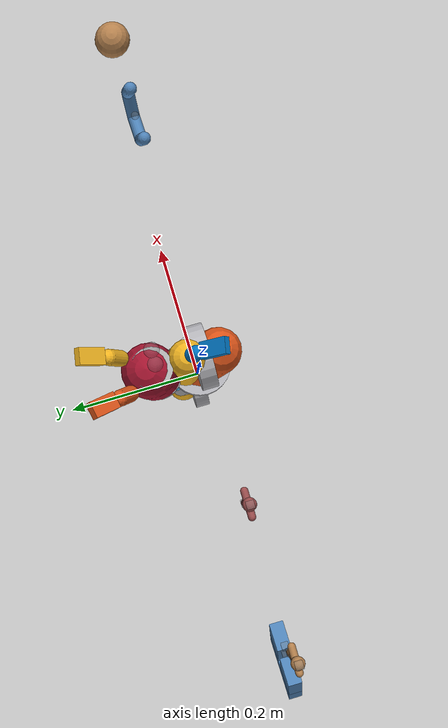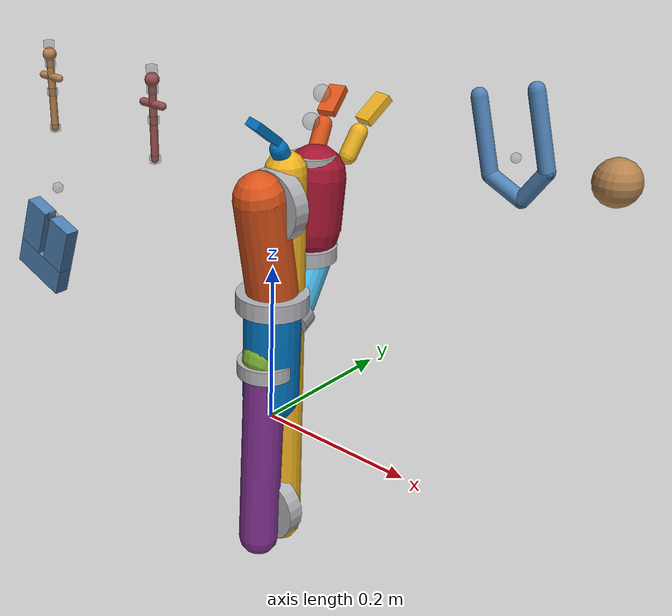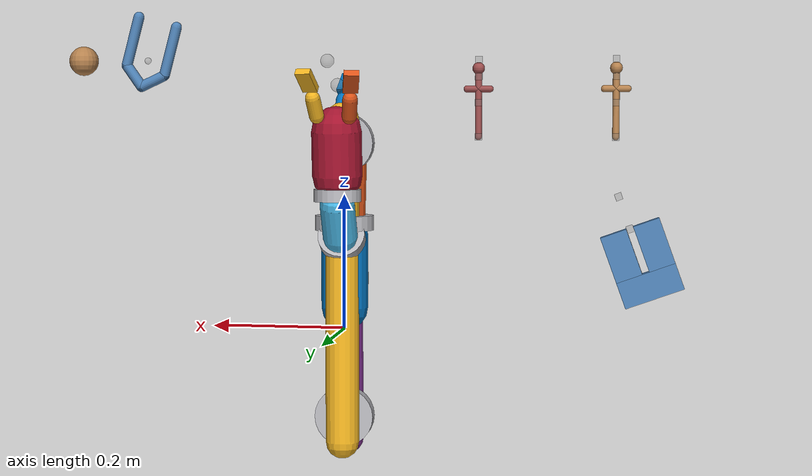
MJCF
<mujoco model='jaco'>
  <include file="./common/visual.xml"/>
  <include file="./common/skybox.xml"/>
  <include file="./common/materials.xml"/>

  <default>
    <geom contype='1' conaffinity='1' condim='3' friction='.1 .1' solimp='.95 .98 .0005' solref='0.02 1.1' density='1'/>
    <joint type='hinge' armature='0' damping='0'
      solimpfriction='.95 .95 0' solreffriction='.02 1' solimplimit='0 .99 .01' solreflimit='.02 1'/>
    <site rgba='.5 .5 .5 .3'/>
    <general ctrllimited='true' ctrlrange='-0.84 0.84' forcelimited='true'/>
    <default class='big_joint'>
      <joint frictionloss='.01' armature='1' damping='0.01' range='-3.141592653589793 9.42477796076938' limited='false'/>
      <velocity kv='20' forcerange='-3.15 3.15'/>
    </default>
    <default class='little_joint'>
      <joint frictionloss='.01' armature='1' damping='0.01' range='-3.141592653589793 9.42477796076938' limited='false'/>
      <velocity kv='20' forcerange='-3.15 3.15'/>
    </default>
    <default class='finger'>
      <joint frictionloss='0.1' armature='.1' axis='0 0 1' limited='true' range='0.15 1.2' damping='.1'/>
      <velocity kv='10' ctrlrange='-0.84 0.84' gear='1' forcerange='-1.5 1.5'/>
    </default>
    <default class='fingertip'>
      <geom type='box' pos='0.065 -0.022 0' size='0.02 .005 .011' rgba='1 0 0 1'
            quat='1 0 0 -0.235' condim='4'/>
      <site type='ellipsoid' pos='0.065 -0.022 0' size='0.02 .005 .011'
            quat='1 0 0 -0.235'/>
    </default>

    <default class='base'>
      <geom type='capsule' size='0.0350512 0.0555543' pos='-0.000132925 -0.000516418 0.0820911' quat='0.6951 -0.00714564 0.00738544 0.71884'/>
    </default>
    <default class='link_1'>
      <geom type='capsule' size='0.031417 0.0668352' pos='-3.49946e-05 0.010651 -0.0670012' quat='0.704277 0.0627825 -0.0628 0.70435'/>
    </default>
    <default class='link_2'>
      <geom type='capsule' size='0.0251592 0.240341' pos='0.205004 7.5835e-05 -0.0202812' quat='2.23957e-06 0.707108 5.30416e-06 0.707106'/>
    </default>
    <default class='link_3'>
      <geom type='capsule' size='0.0255647 0.120643' pos='0.0843942 7.48907e-06 -0.0177123' quat='-4.64475e-05 0.692702 -4.11814e-05 0.721224'/>
    </default>
    <default class='link_4'>
      <geom type='capsule' size='0.0257405 0.0289568' pos='0.0101659 -4.64261e-05 -0.0369867' quat='0.965925 1.43712e-05 -0.258823 3.85082e-06'/>
    </default>
    <default class='link_5'>
      <geom type='capsule' size='0.0257405 0.0289568' pos='0.0101659 -4.64261e-05 -0.0369867' quat='0.965925 1.43712e-05 -0.258823 3.85082e-06'/>
    </default>
    <default class='link_6'>
      <geom type='capsule' size='0.0368731 0.0322296' pos='0.00628384 -2.92087e-05 -0.0608681' quat='0.708562 -0.0338601 -0.0358744 0.703923'/>
    </default>
    <default class='finger_knuckle'>
      <geom type='capsule' size='0.0108231 0.0145116' pos='0.0190913 -0.0112192 1.10387e-06' quat='0.475811 -0.475815 0.523071 -0.523068'/>
    </default>

    <default class="object">
      <geom material="self"/>
    </default>

    <default class="task">
      <site rgba="0 0 0 0"/>
    </default>

    <default class="obstacle">
      <geom material="decoration" friction="0"/>
    </default>

    <default class="ghost">
      <geom material="target" contype="0" conaffinity="0"/>
    </default>

  </default>

  <worldbody>
    <body name='b_base' pos='0 0 0.005'>
      <site type='sphere' size='.01' name='basesite' pos='0 0 0' rgba='1 0 0 1'/>
      <inertial pos='-0.000132925 -0.000516418 0.0820911' quat='0.6951 -0.00714556 0.00738537 0.71884' mass='0.00718278' diaginertia='0.00157301 0.00157269 0.00058831'/>
      <geom name='base' class='base' rgba='0 0.4470 0.7410 1'/>
      <body name='b_1' pos='0 0 0.1535' quat='0 -1 0 0'>
        <inertial pos='-3.49946e-005 0.010651 -0.0670012' quat='0.704277 0.0627825 -0.0628 0.70435' mass='0.00644357' diaginertia='0.00172311 0.00163259 0.00042883'/>
        <joint name='joint_1' class='big_joint' axis='0 0 1'/>
        <geom name='link_1' class='link_1' rgba='0.8500 0.3250 0.0980 1'/>
        <geom name='ring_1' contype='0' conaffinity='0' type='cylinder' size='0.044 0.011' pos='0 0 0' rgba='0.7 0.7 0.72 1'/>
        <body name='b_2' pos='0 0 -0.1185' quat='-0.7071067811865475 0.7071067811865475 0.7071067811865475 0.7071067811865475'>
          <inertial pos='0.205004 7.5835e-005 -0.0202812' quat='2.24027e-006 0.707108 5.30493e-006 0.707106' mass='0.011691' diaginertia='0.0253426 0.0250512 0.000536357'/>
          <joint name='joint_2' class='big_joint' axis='0 0 1'/>
          <geom name='link_2' class='link_2' rgba='0.9290 0.6940 0.1250 1'/>
          <geom name='ring_2' contype='0' conaffinity='0' type='cylinder' size='0.044 0.011' pos='0 0 0' euler='0 0 0' rgba='0.7 0.7 0.72 1'/>
          <body name='b_3' pos='0.41 0 0' quat='0 0 1 0'>
            <inertial pos='0.0843942 7.48909e-006 -0.0177123' quat='-4.64469e-005 0.692702 -4.11798e-005 0.721224' mass='0.00673417' diaginertia='0.00420255 0.00409328 0.000303584'/>
            <joint name='joint_3' class='big_joint' axis='0 0 1' range='0.6131110819452792 5.673924357222234' limited='true'/>
            <geom name='link_3' class='link_3' rgba='0.4940 0.1840 0.5560 1'/>
            <geom name='ring_3' contype='0' conaffinity='0' type='cylinder' size='0.044 0.011' pos='0 0 0' euler='0 0 0' rgba='0.7 0.7 0.72 1'/>
            <body name='b_4' pos='0.207 0 -0.01125' quat='-0.7071067811865475 0 0.7071067811865475 0'>
              <inertial pos='0.0101659 -4.64261e-005 -0.0369867' quat='0.965925 1.91737e-005 -0.258823 -1.40769e-005' mass='0.00221423' diaginertia='0.0001816 0.000174586 9.79319e-005'/>
              <joint name='joint_4' class='little_joint' axis='0 0 1'/>
              <geom name='link_4' class='link_4' rgba='0.4660 0.6740 0.1880 1'/>
              <geom name='ring_4' contype='0' conaffinity='0' type='cylinder' size='0.035 0.009' pos='0 0 0' euler='0 0 0' rgba='0.7 0.7 0.7 1'/>
              <body name='b_5' pos='0.037 0 -0.06408' quat='0 0.5 0 -0.8660254037844386'>
                <inertial pos='0.0101659 -4.64261e-005 -0.0369867' quat='0.965925 1.91737e-005 -0.258823 -1.40769e-005' mass='0.00221423' diaginertia='0.0001816 0.000174586 9.79319e-005'/>
                <joint name='joint_5' class='little_joint' axis='0 0 1'/>
                <geom name='ring_5' contype='0' conaffinity='0' type='cylinder' size='0.035 0.009' pos='0 0 0' euler='0 0 0' rgba='0.7 0.7 0.72 1'/>
                <geom name='link_5' class='link_5' rgba='0.3010 0.7450 0.9330 1'/>
                <body name='b_hand' pos='0.037 0 -0.06408' quat='0 -0.5 0 0.8660254037844386'>
                  <camera name='cam_hand' pos='0 .015 -.13' fovy='135'/>
                  <site type='sphere' size='.01' name='wristsite' pos='0 0 0' rgba='1 0 0 1'/>
                  <site type='sphere' size='.01' name='gripsite' pos='0 0 -.16' rgba='.5 .5 .5 .3'/>
                  <site type='sphere' size='.01' name='pinchsite' pos='0 0.015 -0.195' rgba='.5 .5 .5 .3'/>
                  <inertial pos='0.00628384 -2.92087e-005 -0.0608681' quat='0.708562 -0.0338601 -0.0358744 0.703923' mass='0.00547172' diaginertia='0.000759818 0.000676099 0.0004995'/>
                  <joint name='joint_6' class='little_joint' axis='0 0 1'/>
                  <geom name='link_6' class='link_6' rgba='0.6350 0.0780 0.1840 1'/>
                  <geom name='ring_hand' contype='0' conaffinity='0' type='cylinder' size='0.035 0.009' pos='0 0 0' euler='0 0 0' rgba='0.7 0.7 0.72 1'/>

                  <body name = 'b_palm'  pos='0.005 0 -0.11' euler='0 0 0'>
                    <geom type='cylinder' contype='0' conaffinity='7'  size='.0275 0.01' friction='1 1' rgba='0.7 0.7 0.7 1' name='palm'/>
                  </body>

                  <body name='b_finger_1' childclass='finger' pos='-0.029 .003 -0.1145' quat='-0.414818 -0.329751 -0.663854 0.52772'>
                    <inertial pos='0.0485761 -0.000715511 0' quat='0.507589 0.507348 0.492543 0.492294' mass='0.000379077' diaginertia='4.00708e-005 4.00527e-005 2.156e-006'/>
                    <joint name='joint_finger_1'/>
                    <geom name='finger_knuckle_1' class='finger_knuckle' rgba='0 0.4470 0.7410 1'/>
                    <geom class='fingertip' name='finger_tip_1' rgba='0 0.4470 0.7410 1'/>
                    <site class='fingertip' name='fingertip1'/>
                  </body>
                  <body name='b_finger_2' childclass='finger' pos='0.0295 0.0216 -0.115' quat='0.561254 -0.620653 0.321748 0.443014'>
                    <inertial pos='0.0485761 -0.000715511 0' quat='0.507589 0.507348 0.492543 0.492294' mass='0.000379077' diaginertia='4.00708e-005 4.00527e-005 2.156e-006'/>
                    <joint name='joint_finger_2'/>
                    <geom name='finger_knuckle_2' class='finger_knuckle' rgba='0.9290 0.6940 0.1250 1'/>
                    <geom class='fingertip' name='finger_tip_2' rgba='0.9290 0.6940 0.1250 1'/>
                    <site class='fingertip' name='fingertip2'/>
                  </body>
                  <body name='b_finger_3' childclass='finger' pos='0.0295 -0.0216 -0.1145' quat='0.625248 -0.567602 0.434845 0.312735'>
                    <inertial pos='0.0485761 -0.000715511 0' quat='0.507589 0.507348 0.492543 0.492294' mass='0.000379077' diaginertia='4.00708e-005 4.00527e-005 2.156e-006'/>
                    <joint name='joint_finger_3'/>
                    <geom name='finger_knuckle_3' class='finger_knuckle' rgba='0.8500 0.3250 0.0980 1'/>
                    <geom class='fingertip' name='finger_tip_3' rgba='0.8500 0.3250 0.0980 1'/>
                    <site class='fingertip' name='fingertip3'/>
                  </body>
                </body>
              </body>
            </body>
          </body>
        </body>
      </body>
    </body>

    <!-- props -->
    <body name="ball" pos=".4 0 .4" childclass="object">
      <joint name="ball_x" type="slide" axis="1 0 0" ref=".4"/>
      <joint name="ball_z" type="slide" axis="0 0 1" ref=".4"/>
      <joint name="ball_y" type="hinge" axis="0 1 0"/>
      <geom  name="ball" type="sphere" size=".022" />
      <site  name="ball" type="sphere"/>
    </body>

    <body name="peg" pos="-.4 0 .4" childclass="object">
      <joint name="peg_x" type="slide" axis="1 0 0" ref="-.4"/>
      <joint name="peg_z" type="slide" axis="0 0 1" ref=".4"/>
      <joint name="peg_y" type="hinge" axis="0 1 0"/>
      <geom name="blade" type="capsule" size=".005" fromto="0 0 -.013 0 0 -.113"/>
      <geom name="guard" type="capsule" size=".005" fromto="-.017 0 -.043 .017 0 -.043"/>
      <body name="pommel" pos="0 0 -.013">
        <geom name="pommel" type="sphere" size=".009"/>
      </body>
      <site name="peg" type="box" pos="0 0 -.063"/>
      <site name="peg_pinch" type="box" pos="0 0 -.025"/>
      <site name="peg_grasp" type="box" pos="0 0 0"/>
      <site name="peg_tip"   type="box" pos="0 0 -.113"/>
    </body>

    <!-- receptacles -->
    <body name="slot" pos="-.405 0 .2" euler="0 20 0" childclass="obstacle">
      <geom name="slot_0" type="box" pos="-.0252 0 -.083" size=".0198 .01 .035"/>
      <geom name="slot_1" type="box" pos=" .0252 0 -.083" size=".0198 .01 .035"/>
      <geom name="slot_2" type="box" pos="  0   0 -.138" size=".045 .01 .02"/>
      <site name="slot" type="box" pos="0 0 0"/>
      <site name="slot_end" type="box" pos="0 0 -.05"/>
    </body>

    <body name="cup" pos=".3 0 .4" euler="0 -15 0" childclass="obstacle">
      <geom name="cup_0" type="capsule" size=".008" fromto="-.03 0 .06 -.03 0 -.015" />
      <geom name="cup_1" type="capsule" size=".008" fromto="-.03 0 -.015 0 0 -.04" />
      <geom name="cup_2" type="capsule" size=".008" fromto="0 0 -.04 .03 0 -.015" />
      <geom name="cup_3" type="capsule" size=".008" fromto=".03 0 -.015 .03 0 .06" />
      <site name="cup" size=".005"/>
    </body>

    <!-- targets -->
    <body name="target_ball" pos=".4 .001 .4" childclass="ghost">
      <geom  name="target_ball" type="sphere" size=".02" />
      <site  name="target_ball" type="sphere"/>
    </body>

    <body name="target_peg" pos="-.2 .001 .4" childclass="ghost">
      <geom name="target_blade" type="capsule" size=".005" fromto="0 0 -.013 0 0 -.113"/>
      <geom name="target_guard" type="capsule" size=".005" fromto="-.017 0 -.043 .017 0 -.043"/>
      <geom name="target_pommel" type="sphere" size=".009" pos="0 0 -.013"/>
      <site name="target_peg" type="box" pos="0 0 -.063"/>
      <site name="target_peg_pinch" type="box" pos="0 0 -.025"/>
      <site name="target_peg_grasp" type="box" pos="0 0 0"/>
      <site name="target_peg_tip"   type="box" pos="0 0 -.113"/>
    </body>

  </worldbody>

  <contact>
    <exclude body1='b_base' body2='b_1'/>
    <exclude body1='b_finger_1' body2='b_finger_2'/>
    <exclude body1='b_finger_1' body2='b_finger_3'/>
    <exclude body1='b_finger_2' body2='b_finger_3'/>
  </contact>

  <sensor>
    <touch name="fingertip1" site='fingertip1'/>
    <touch name="fingertip2" site='fingertip2'/>
    <touch name="fingertip3" site='fingertip3'/>
    <force name="wristforce" site='wristsite'/>
    <torque name="wristtorque" site='wristsite'/>
    <force name="baseforce" site='basesite'/>
    <torque name="basetorque" site='basesite'/>
  </sensor>

  <actuator>
    <velocity joint='joint_1'        class='big_joint'/>
    <velocity joint='joint_2'        class='big_joint'/>
    <velocity joint='joint_3'        class='big_joint'/>
    <velocity joint='joint_4'        class='little_joint'/>
    <velocity joint='joint_5'        class='little_joint'/>
    <velocity joint='joint_6'        class='little_joint'/>
    <velocity joint='joint_finger_1' class='finger'/>
    <velocity joint='joint_finger_2' class='finger'/>
    <velocity joint='joint_finger_3' class='finger'/>
  </actuator>
</mujoco>

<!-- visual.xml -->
<mujoco>
    <visual>
        <headlight ambient=".4 .4 .4" diffuse=".8 .8 .8" specular="0.1 0.1 0.1"/>
        <map znear=".01"/>
        <quality shadowsize="2048"/>
    </visual>
</mujoco>

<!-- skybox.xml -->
<mujoco>
    <asset>
        <texture name="skybox" type="skybox" builtin="gradient" rgb1=".4 .6 .8" rgb2="0 0 0"
                 width="800" height="800" mark="random" markrgb="1 1 1"/>
    </asset>
</mujoco>

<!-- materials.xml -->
<!--
Common textures, colors and materials to be used throughout this suite. Some
materials such as xxx_highlight are activated on occurence of certain events,
for example receiving a positive reward.
-->
<mujoco>
  <asset>
    <texture name="grid" type="2d" builtin="checker" rgb1=".1 .2 .3" rgb2=".2 .3 .4" width="300" height="300" mark="edge" markrgb=".2 .3 .4"/>
    <material name="grid" texture="grid" texrepeat="1 1" texuniform="true" reflectance=".2"/>
    <material name="self" rgba=".7 .5 .3 1"/>
    <material name="self_default" rgba=".7 .5 .3 1"/>
    <material name="self_highlight" rgba="0 .5 .3 1"/>
    <material name="effector" rgba=".7 .4 .2 1"/>
    <material name="effector_default" rgba=".7 .4 .2 1"/>
    <material name="effector_highlight" rgba="0 .5 .3 1"/>
    <material name="decoration" rgba=".3 .5 .7 1"/>
    <material name="eye" rgba="0 .2 1 1"/>
    <material name="target" rgba=".6 .3 .3 1"/>
    <material name="target_default" rgba=".6 .3 .3 1"/>
    <material name="target_highlight" rgba=".6 .3 .3 .4"/>
    <material name="site" rgba=".5 .5 .5 .3"/>
    <material name="white" rgba="1.0 1.0 1.0 1"/>
    <material name="dark_gray" rgba="0.1 0.1 0.1 1"/>
    <material name="light_gray" rgba="0.45 0.45 0.45 1"/>
    <material name="reference_site" rgba="1 0 0 0.5"/>
  </asset>
</mujoco>
